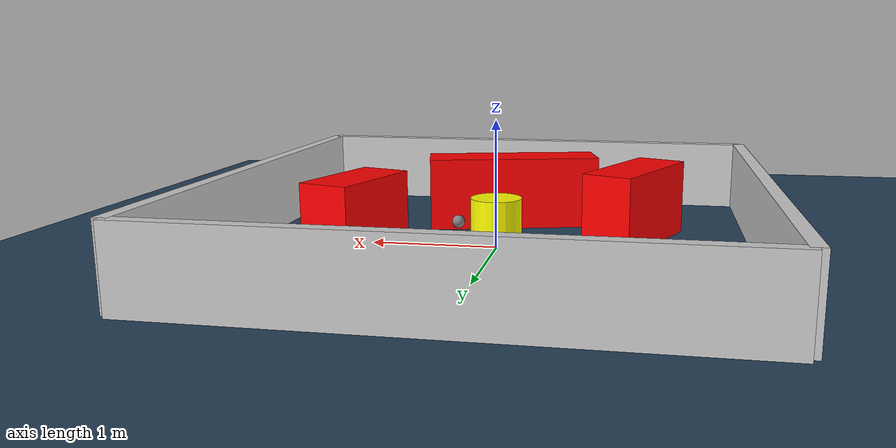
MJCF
<?xml version="1.0" ?>
<mujoco model="generated_environment">
  <option timestep="0.01" integrator="RK4" cone="elliptic"/>
  <default>
    <geom density="1"/>
  </default>
  <asset>
    <texture builtin="gradient" height="3072" rgb1="0.3 0.5 0.7" rgb2="0 0 0" type="skybox" width="512"/>
    <texture builtin="checker" height="300" mark="edge" markrgb="0.8 0.8 0.8" name="groundplane" rgb1="0.2 0.3 0.4" rgb2="0.1 0.2 0.3" type="2d" width="300"/>
    <material name="groundplane" reflectance="0.2" texrepeat="5 5" texture="groundplane" texuniform="true"/>
    <material name="robot" rgba="0.0 1.0 0.0 1"/>
  </asset>
  <worldbody>
    <light dir="0 0 -1" directional="true" pos="0 0 1.5"/>
    <geom condim="4" friction="1.0 0.005 0.001" material="groundplane" name="floor" size="0 0 0.05" type="plane"/>
    <body name="walls">
      <geom name="wall_1" condim="4" pos="-2.0 0.0 0.3" rgba="0.800000011920929 0.800000011920929 0.800000011920929 1.0" size="0.05 2.0 0.3" type="box"/>
      <geom name="wall_2" condim="4" pos="2.0 0.0 0.3" rgba="0.800000011920929 0.800000011920929 0.800000011920929 1.0" size="0.05 2.0 0.3" type="box"/>
      <geom name="wall_3" condim="4" pos="0.0 -2.0 0.3" rgba="0.800000011920929 0.800000011920929 0.800000011920929 1.0" size="2.0 0.05 0.3" type="box"/>
      <geom name="wall_4" condim="4" pos="0.0 2.0 0.3" rgba="0.800000011920929 0.800000011920929 0.800000011920929 1.0" size="2.0 0.05 0.3" type="box"/>
    </body>
    <body name="robot">
      <joint name="joint_x" type="slide" pos="0 0 0" axis="1 0 0"/>
      <joint name="joint_y" type="slide" pos="0 0 0" axis="0 1 0"/>
      <geom name="robot" type="sphere" pos="0.3 0.0 0.2" size="0.05" mass="5." friction="1.0 0.005 0.0001" condim="4" rgba="0.5 0.5 0.5 1.0"/>
      <site name="sensor_ball"/>
    </body>
    <body name="obstacle_movable_1">
      <geom name="obstacle_movable_1" condim="4" pos="0.0 0.0 0.2" euler="0 0 0.0" friction="1.0 0.005 0.001" rgba="1.0 1.0 0.0 1.0" size="0.2 0.2 0.0" type="cylinder" mass="0.1"/>
      <joint type="free"/>
    </body>
    <body name="obstacle_2_static">
      <geom name="obstacle_2_static" condim="4" pos="-1.0526408429980296 -0.4200824184864771 0.3" euler="0 0 245.80762554870387" friction="1.0 0.005 0.001" rgba="1 0 0 1" size="0.5131319299792374 0.2 0.3" type="box"/>
    </body>
    <body name="obstacle_3_static">
      <geom name="obstacle_3_static" condim="4" pos="1.0026830737409245 0.3780827342436177 0.3" euler="0 0 73.25891840094913" friction="1.0 0.005 0.001" rgba="1 0 0 1" size="0.40229815905279925 0.2 0.3" type="box"/>
    </body>
    <body name="obstacle_4_static">
      <geom name="obstacle_4_static" condim="4" pos="0.00637365231338749 -0.8769074184593485 0.3" euler="0 0 194.14716972445396" friction="1.0 0.005 0.001" rgba="1 0 0 1" size="0.7177312307638757 0.2 0.3" type="box"/>
    </body>
  </worldbody>
  <actuator>
    <motor name="actuator_x" joint="joint_x" gear="1" ctrlrange="-1 1"/>
    <motor name="actuator_y" joint="joint_y" gear="1" ctrlrange="-1 1"/>
  </actuator>
</mujoco>
